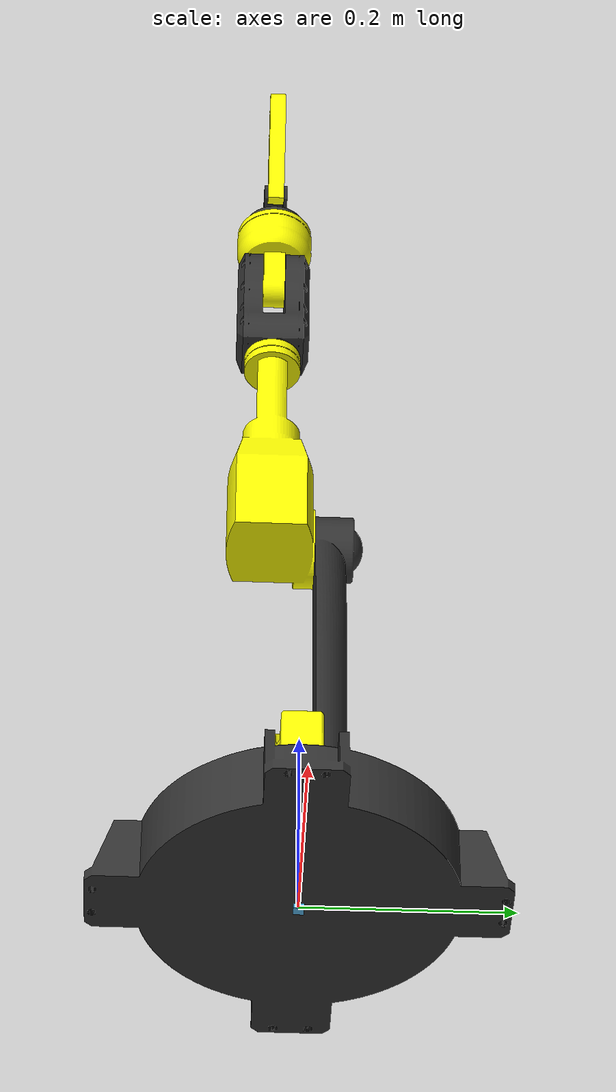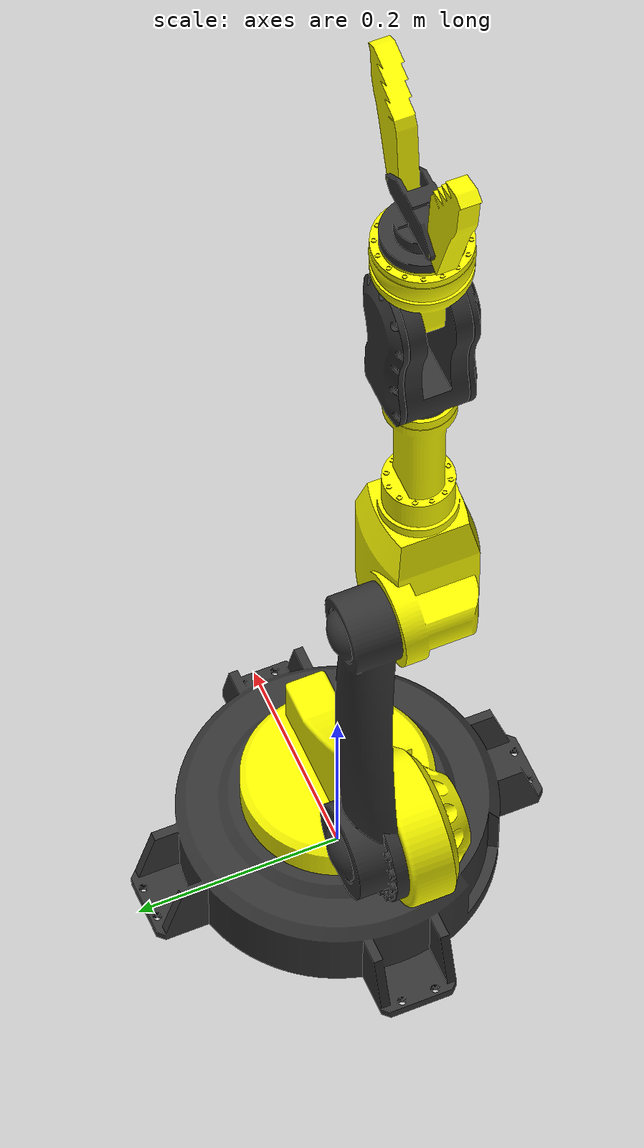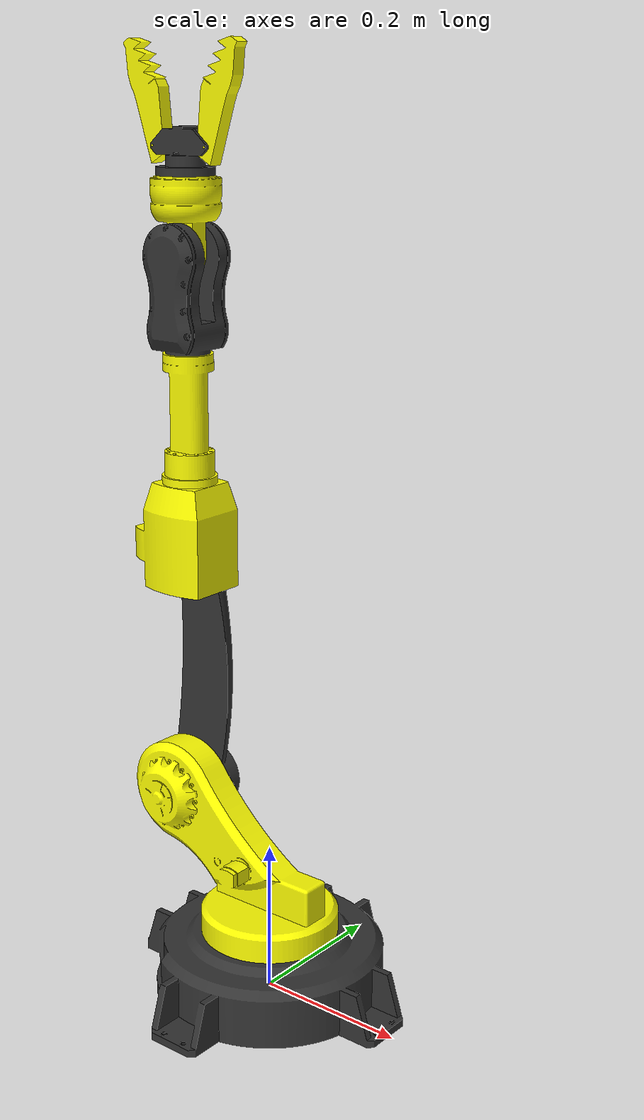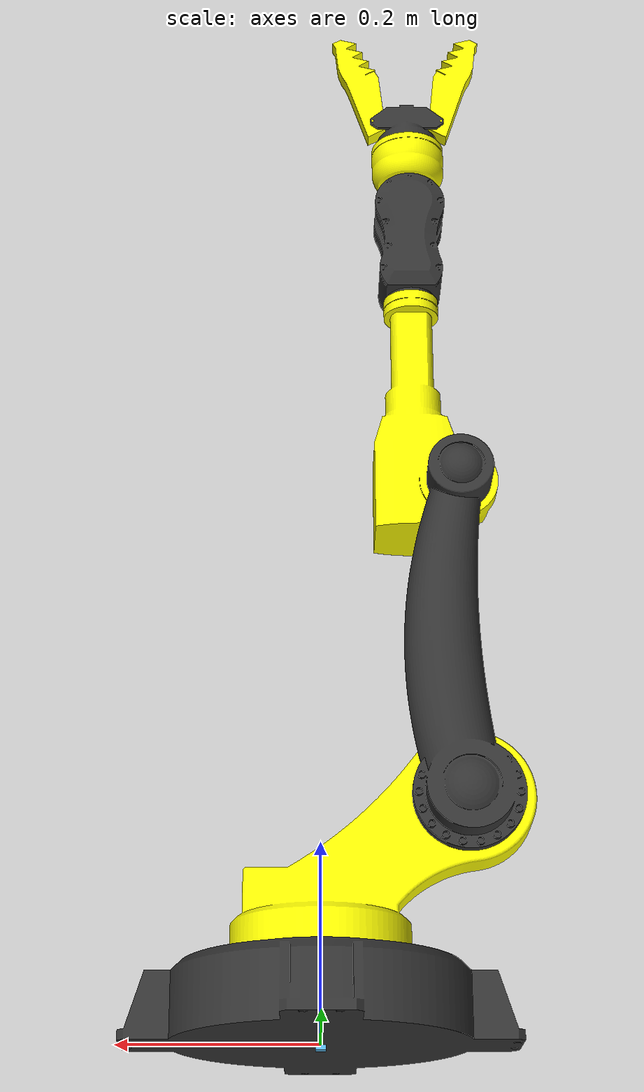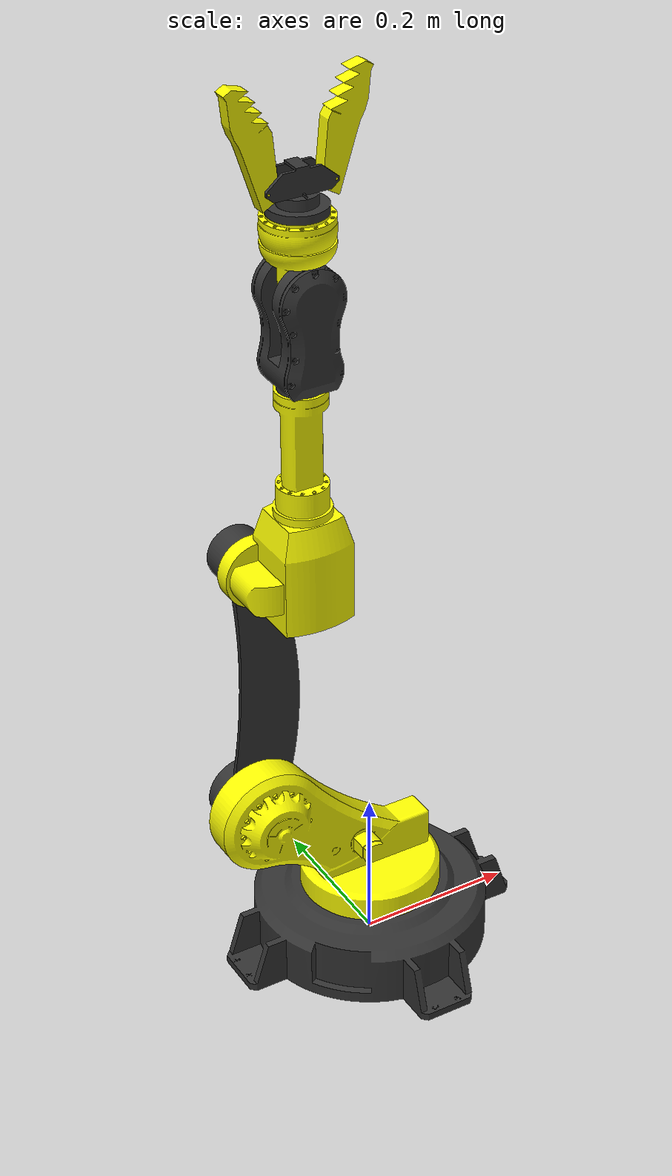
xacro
<?xml version="1.0"?>
<robot xmlns:xacro="http://www.ros.org/wiki/xacro" name="eureka">
    <xacro:arg name="initial_positions_file" default="initial_positions.yaml" />

    <!-- Import eureka urdf file -->
    <xacro:include filename="$(find eureka)/urdf/robot.xacro" />

    <!-- Import control_xacro -->
    <xacro:include filename="eureka.ros2_control.xacro" />

    <xacro:eureka_ros2_control name="FakeSystem" initial_positions_file="$(arg initial_positions_file)"/>

</robot>

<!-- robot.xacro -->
<robot name="eureka" xmlns:xacro="http://www.ros.org/wiki/xacro">

<xacro:include filename="$(find eureka)/urdf/materials.xacro" />
<xacro:include filename="$(find eureka)/urdf/robot.trans" />
<xacro:include filename="$(find eureka)/urdf/robot.gazebo" />
<xacro:include filename="$(find eureka)/urdf/ros2_control.xacro" />

<!-- Define reusable materials -->
<material name="Yellow">
  <color rgba="1 1 0 1"/> <!-- Yellow: Full red and green, no blue -->
</material>
<material name="Black">
  <color rgba="0.2 0.2 0.2 1"/> <!-- Black: No red, green, or blue -->
</material>

<!-- Links declaration -->
<link name="base_link">
  <inertial>
    <origin xyz="0.0007276697908359509 0.0007276631815662651 0.03880049948733369" rpy="0 0 0"/>
    <mass value="45.58402492211594"/>
    <inertia ixx="0.288555" iyy="0.288556" izz="0.52712" ixy="0.003308" iyz="-0.000123" ixz="-0.000123"/>
  </inertial>
  <visual>
    <origin xyz="0 0 0" rpy="0 0 0"/>
    <geometry>
      <mesh filename="file://$(find eureka)/meshes/base_link.stl" scale="0.001 0.001 0.001"/>
    </geometry>
    <material name="Black"/>
  </visual>
  <collision>
    <origin xyz="0 0 0" rpy="0 0 0"/>
    <geometry>
      <mesh filename="file://$(find eureka)/meshes/base_link.stl" scale="0.001 0.001 0.001"/>
    </geometry>
  </collision>
</link>
<link name="link1">
  <inertial>
    <origin xyz="-0.05902032579629249 -0.003941108419941054 0.06476575765172447" rpy="0 0 0"/>
    <mass value="18.749572652131352"/>
    <inertia ixx="0.097337" iyy="0.193623" izz="0.132247" ixy="-0.004857" iyz="0.004386" ixz="0.074155"/>
  </inertial>
  <visual>
    <origin xyz="-0.0 -0.0 -0.104" rpy="0 0 0"/>
    <geometry>
      <mesh filename="file://$(find eureka)/meshes/link1.stl" scale="0.001 0.001 0.001"/>
    </geometry>
    <material name="Yellow"/>
  </visual>
  <collision>
    <origin xyz="-0.0 -0.0 -0.104" rpy="0 0 0"/>
    <geometry>
      <mesh filename="file://$(find eureka)/meshes/link1.stl" scale="0.001 0.001 0.001"/>
    </geometry>
  </collision>
</link>
<link name="link2">
  <inertial>
    <origin xyz="0.009346897146999489 0.03651319071311888 0.14985039970529684" rpy="0 0 0"/>
    <mass value="8.312006838524212"/>
    <inertia ixx="0.150086" iyy="0.153093" izz="0.005505" ixy="0.000189" iyz="0.000123" ixz="-0.001866"/>
  </inertial>
  <visual>
    <origin xyz="0.15 0.0 -0.244" rpy="0 0 0"/>
    <geometry>
      <mesh filename="file://$(find eureka)/meshes/link2.stl" scale="0.001 0.001 0.001"/>
    </geometry>
    <material name="Black"/>
  </visual>
  <collision>
    <origin xyz="0.15 0.0 -0.244" rpy="0 0 0"/>
    <geometry>
      <mesh filename="file://$(find eureka)/meshes/link2.stl" scale="0.001 0.001 0.001"/>
    </geometry>
  </collision>
</link>
<link name="link3">
  <inertial>
    <origin xyz="0.039242624893359335 -0.026360900955918608 0.044012616156980156" rpy="0 0 0"/>
    <mass value="11.391153211315999"/>
    <inertia ixx="0.063977" iyy="0.067087" izz="0.015219" ixy="0.000984" iyz="0.000822" ixz="-0.002886"/>
  </inertial>
  <visual>
    <origin xyz="0.15 0.0 -0.594" rpy="0 0 0"/>
    <geometry>
      <mesh filename="file://$(find eureka)/meshes/link3.stl" scale="0.001 0.001 0.001"/>
    </geometry>
    <material name="Yellow"/>
  </visual>
  <collision>
    <origin xyz="0.15 0.0 -0.594" rpy="0 0 0"/>
    <geometry>
      <mesh filename="file://$(find eureka)/meshes/link3.stl" scale="0.001 0.001 0.001"/>
    </geometry>
  </collision>
</link>
<link name="link4">
  <inertial>
    <origin xyz="1.007277219966518e-09 -4.787836793695988e-16 0.08948922591366981" rpy="0 0 0"/>
    <mass value="4.568343005571681"/>
    <inertia ixx="0.012072" iyy="0.010883" izz="0.004449" ixy="-0.0" iyz="0.0" ixz="-0.0"/>
  </inertial>
  <visual>
    <origin xyz="0.105 0.028 -0.82" rpy="0 0 0"/>
    <geometry>
      <mesh filename="file://$(find eureka)/meshes/link4.stl" scale="0.001 0.001 0.001"/>
    </geometry>
    <material name="Black"/>
  </visual>
  <collision>
    <origin xyz="0.105 0.028 -0.82" rpy="0 0 0"/>
    <geometry>
      <mesh filename="file://$(find eureka)/meshes/link4.stl" scale="0.001 0.001 0.001"/>
    </geometry>
  </collision>
</link>
<link name="link5">
  <inertial>
    <origin xyz="-5.412337245047638e-16 -0.011999999999995629 0.058283671544094084" rpy="0 0 0"/>
    <mass value="2.651613220666019"/>
    <inertia ixx="0.002836" iyy="0.002856" izz="0.0019" ixy="0.0" iyz="-0.0" ixz="0.0"/>
  </inertial>
  <visual>
    <origin xyz="0.105 0.0155 -0.955" rpy="0 0 0"/>
    <geometry>
      <mesh filename="file://$(find eureka)/meshes/link5.stl" scale="0.001 0.001 0.001"/>
    </geometry>
    <material name="Yellow"/>
  </visual>
  <collision>
    <origin xyz="0.105 0.0155 -0.955" rpy="0 0 0"/>
    <geometry>
      <mesh filename="file://$(find eureka)/meshes/link5.stl" scale="0.001 0.001 0.001"/>
    </geometry>
  </collision>
</link>
<link name="link6">
  <inertial>
    <origin xyz="-2.914335439641036e-16 -8.847089727481716e-16 0.0063504911070444425" rpy="0 0 0"/>
    <mass value="0.600362897277973"/>
    <inertia ixx="0.000253" iyy="0.000301" izz="0.000315" ixy="0.0" iyz="0.0" ixz="0.0"/>
  </inertial>
  <visual>
    <origin xyz="0.105 0.0275 -1.059" rpy="0 0 0"/>
    <geometry>
      <mesh filename="file://$(find eureka)/meshes/link6.stl" scale="0.001 0.001 0.001"/>
    </geometry>
    <material name="Black"/>
  </visual>
  <collision>
    <origin xyz="0.105 0.0275 -1.059" rpy="0 0 0"/>
    <geometry>
      <mesh filename="file://$(find eureka)/meshes/link6.stl" scale="0.001 0.001 0.001"/>
    </geometry>
  </collision>
</link>
<link name="link7a">
  <inertial>
    <origin xyz="0.012842681087569856 -0.009000000000000907 0.0516195534637649" rpy="0 0 0"/>
    <mass value="0.5898580691232992"/>
    <inertia ixx="0.00075" iyy="0.000861" izz="0.000143" ixy="0.0" iyz="0.0" ixz="-0.000223"/>
  </inertial>
  <visual>
    <origin xyz="0.06419 0.0185 -1.081892" rpy="0 0 0"/>
    <geometry>
      <mesh filename="file://$(find eureka)/meshes/link7a.stl" scale="0.001 0.001 0.001"/>
    </geometry>
    <material name="Yellow"/>
  </visual>
  <collision>
    <origin xyz="0.06419 0.0185 -1.081892" rpy="0 0 0"/>
    <geometry>
      <mesh filename="file://$(find eureka)/meshes/link7a.stl" scale="0.001 0.001 0.001"/>
    </geometry>
  </collision>
</link>
<link name="link7b">
  <inertial>
    <origin xyz="-0.012842681087570723 0.008999999999999144 0.051619553463764234" rpy="0 0 0"/>
    <mass value="0.5898580691232992"/>
    <inertia ixx="0.00075" iyy="0.000861" izz="0.000143" ixy="0.0" iyz="0.0" ixz="0.000223"/>
  </inertial>
  <visual>
    <origin xyz="0.14581 0.0365 -1.081892" rpy="0 0 0"/>
    <geometry>
      <mesh filename="file://$(find eureka)/meshes/link7b.stl" scale="0.001 0.001 0.001"/>
    </geometry>
    <material name="Yellow"/>
  </visual>
  <collision>
    <origin xyz="0.14581 0.0365 -1.081892" rpy="0 0 0"/>
    <geometry>
      <mesh filename="file://$(find eureka)/meshes/link7b.stl" scale="0.001 0.001 0.001"/>
    </geometry>
  </collision>
</link>
<link name="dummy_root">
    <visual>
        <geometry>
            <box size="0.01 0.01 0.01"/>
        </geometry>
    </visual>
</link>

<!-- Joints declaration -->
<joint name="joint1" type="continuous">
  <origin xyz="0.0 0.0 0.104" rpy="0 0 0"/>
  <parent link="base_link"/>
  <child link="link1"/>
  <axis xyz="0.0 0.0 1.0"/>
</joint>
<joint name="joint2" type="continuous">
  <origin xyz="-0.15 -0.0 0.14" rpy="0 0 0"/>
  <parent link="link1"/>
  <child link="link2"/>
  <axis xyz="0.0 1.0 0.0"/>
</joint>
<joint name="joint3" type="continuous">
  <origin xyz="0.0 0.0 0.35" rpy="0 0 0"/>
  <parent link="link2"/>
  <child link="link3"/>
  <axis xyz="-0.0 -1.0 -0.0"/>
</joint>
<joint name="rigid1" type="fixed">
  <origin xyz="0.045 -0.028 0.226" rpy="0 0 0"/>
  <parent link="link3"/>
  <child link="link4"/>
</joint>
<joint name="joint4" type="continuous">
  <origin xyz="0.0 0.0125 0.135" rpy="0 0 0"/>
  <parent link="link4"/>
  <child link="link5"/>
  <axis xyz="0.0 1.0 0.0"/>
</joint>
<joint name="joint5" type="continuous">
  <origin xyz="0.0 -0.012 0.104" rpy="0 0 0"/>
  <parent link="link5"/>
  <child link="link6"/>
  <axis xyz="-0.0 -0.0 1.0"/>
</joint>
<joint name="joint6a" type="continuous">
  <origin xyz="0.04081 0.009 0.022892" rpy="0 0 0"/>
  <parent link="link6"/>
  <child link="link7a"/>
  <axis xyz="0.0 1.0 0.0"/>
</joint>
<joint name="joint6b" type="continuous">
  <origin xyz="-0.04081 -0.009 0.022892" rpy="0 0 0"/>
  <parent link="link6"/>
  <child link="link7b"/>
  <axis xyz="-0.0 -1.0 -0.0"/>
</joint>
<joint name="dummy_root_to_base" type="fixed">
    <parent link="dummy_root"/>
    <child link="base_link"/>
</joint>

</robot>

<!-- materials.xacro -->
<robot name="eureka" xmlns:xacro="http://www.ros.org/wiki/xacro" >

<material name="silver">
  <color rgba="0.700 0.700 0.700 1.000"/>
</material>

</robot>
